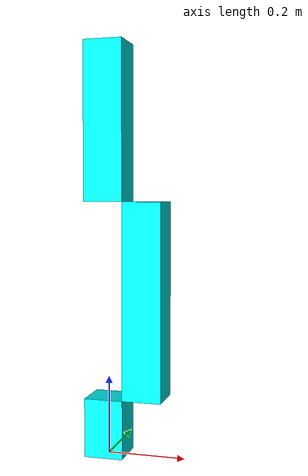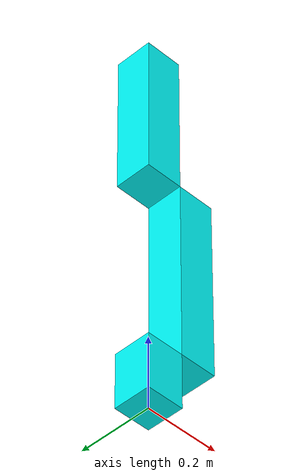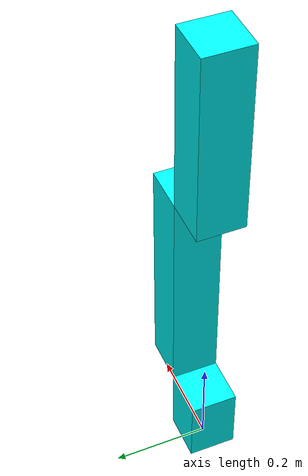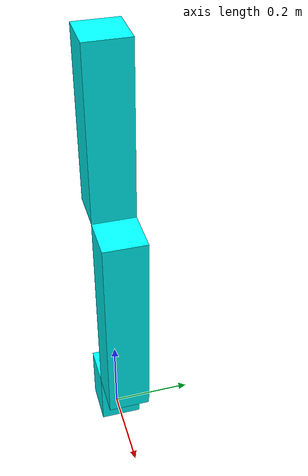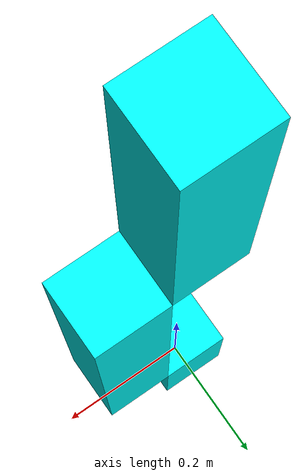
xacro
<?xml version="1.0"?>
<robot xmlns:xacro="http://ros.org/wiki/xacro" name="two_dof_robot">

  <xacro:property name="base_width" value = "0.1"/>
  <xacro:property name="base_length" value = "0.1"/>
  <xacro:property name="base_height" value = "0.15"/>

  <xacro:property name="arm_width" value = "0.1"/>
  <xacro:property name="arm_length" value = "0.1"/>
  <xacro:property name="arm_height" value = "0.5"/>

  <xacro:property name="forearm_width" value = "0.1"/>
  <xacro:property name="forearm_length" value = "0.1"/>
  <xacro:property name="forearm_height" value = "0.4"/>

  <xacro:property name="link_off" value="0.1"/>

  <xacro:macro name="box_inertia" params="m w h d">
    <inertial>
      <origin xyz="0 0 0" rpy="${pi/2} 0 ${pi/2}"/>
      <mass value="${m}"/>
      <inertia ixx="${(m/12) * (h*h + d*d)}" ixy="0.0" ixz="0.0" iyy="${(m/12) * (w*w + d*d)}" iyz="0.0" izz="${(m/12) * (w*w + h*h)}"/>
    </inertial>
  </xacro:macro>

  <!-- Referencia Robot -->
  <link name="base_footprint">
  </link>

  <!-- Base Robot -->
  <link name="base_link">
    <visual>
    <origin xyz="0 0 ${base_height/2}" rpy="0 0 0"/>
      <geometry>
        <box size="${base_length} ${base_width} ${base_height}"/>
      </geometry>
      <material name="Cyan">
        <color rgba="0 1.0 1.0 1.0"/>
      </material>
    </visual>
    <collision>
    <origin xyz="0 0 ${base_height/2}" rpy="0 0 0"/>
      <geometry>
        <box size="${base_length} ${base_width} ${base_height}"/>
      </geometry>
    </collision>

    <xacro:box_inertia m="5" w="${base_width}" d="${base_length}" h="${base_height}"/>
  </link>

  <joint name="base_link_joint" type="fixed">
    <parent link="base_footprint"/>
    <child link="base_link"/>
  </joint>

  <!-- Arm Robot -->
  <link name="arm_link">
    <visual>
    <origin xyz="0 0 ${arm_height/2}" rpy="0 0 0"/>
      <geometry>
        <box size="${arm_length} ${arm_width} ${arm_height}"/>
      </geometry>
      <material name="Cyan">
        <color rgba="0 1.0 1.0 1.0"/>
      </material>
    </visual>
    <collision>
    <origin xyz="0 0 0" rpy="0 0 0"/>
      <geometry>
        <box size="${arm_length} ${arm_width} ${arm_height}"/>
      </geometry>
    </collision>
    <xacro:box_inertia m="5" w="${arm_width}" d="${arm_length}" h="${arm_height}"/>
  </link>

  <joint name="arm_joint" type="revolute">
    <origin xyz="${link_off} 0.0 ${base_height}" rpy="0.0 0.0 0.0"/>
    <parent link="base_link"/>
    <child link="arm_link"/>
    <axis xyz="1.0 0.0 0.0"/>
    <limit lower="0.0" upper="3.15" effort="1.0" velocity="10.0"/>
  </joint>

  <!-- Forearm Robot -->
  <link name="forearm_link">
    <visual>
    <origin xyz="0 0 ${forearm_height/2}" rpy="0 0 0"/>
      <geometry>
        <box size="${forearm_length} ${forearm_width} ${forearm_height}"/>
      </geometry>
      <material name="Cyan">
        <color rgba="0 1.0 1.0 1.0"/>
      </material>
    </visual>
    <collision>
    <origin xyz="0 0 ${forearm_height/2}" rpy="0 0 0"/>
      <geometry>
        <box size="${forearm_length} ${forearm_width} ${forearm_height}"/>
      </geometry>
    </collision>
    <xacro:box_inertia m="5" w="${forearm_width}" d="${forearm_length}" h="${forearm_height}"/>
  </link>

  <joint name="forearm_joint" type="revolute">
    <origin xyz="${-link_off} 0.0 ${arm_height}" rpy="0.0 0.0 0.0"/>
    <parent link="arm_link"/>
    <child link="forearm_link"/>
    <axis xyz="1.0 0.0 0.0"/>
    <limit lower="0.0" upper="3.15" effort="1.0" velocity="10.0"/>
  </joint>

</robot>
